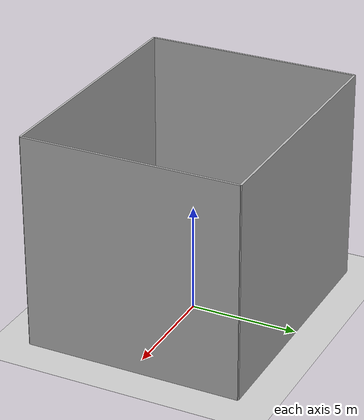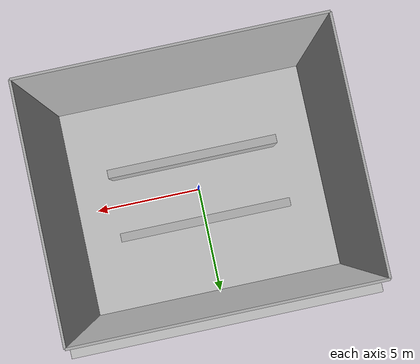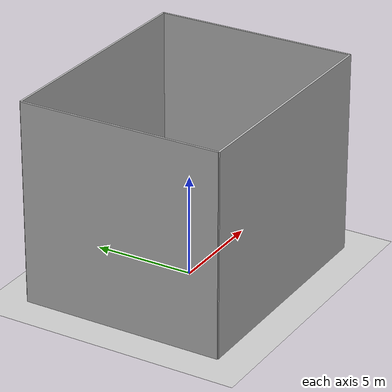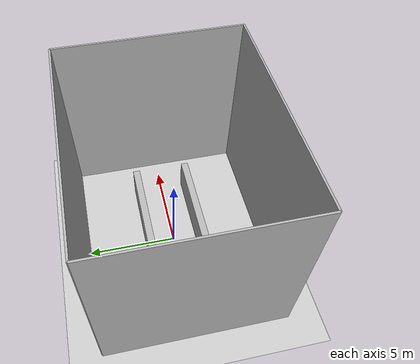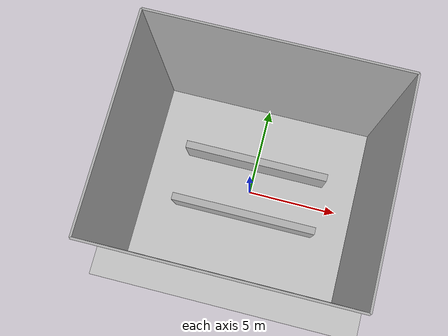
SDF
<?xml version="1.0" ?>
<sdf version="1.7">
  <world name="multi_vendor_warehouse">
    <physics type="ode">
      <max_step_size>0.001</max_step_size>
      <real_time_factor>1.0</real_time_factor>
      <real_time_update_rate>1000</real_time_update_rate>
    </physics>

    <include><uri>model://sun</uri></include>
    <include><uri>model://ground_plane</uri></include>

    <!-- Perimeter walls (12 m × 10 m × 10 m tall) -->
    <model name="wall_north">
      <static>true</static>
      <pose>0 5 5 0 0 0</pose>
      <link name="link">
        <collision name="c"><geometry><box><size>12 0.1 10</size></box></geometry></collision>
        <visual name="v"><geometry><box><size>12 0.1 10</size></box></geometry></visual>
      </link>
    </model>
    <model name="wall_south">
      <static>true</static>
      <pose>0 -5 5 0 0 0</pose>
      <link name="link">
        <collision name="c"><geometry><box><size>12 0.1 10</size></box></geometry></collision>
        <visual name="v"><geometry><box><size>12 0.1 10</size></box></geometry></visual>
      </link>
    </model>
    <model name="wall_east">
      <static>true</static>
      <pose>6 0 5 0 0 0</pose>
      <link name="link">
        <collision name="c"><geometry><box><size>0.1 10 10</size></box></geometry></collision>
        <visual name="v"><geometry><box><size>0.1 10 10</size></box></geometry></visual>
      </link>
    </model>
    <model name="wall_west">
      <static>true</static>
      <pose>-6 0 5 0 0 0</pose>
      <link name="link">
        <collision name="c"><geometry><box><size>0.1 10 10</size></box></geometry></collision>
        <visual name="v"><geometry><box><size>0.1 10 10</size></box></geometry></visual>
      </link>
    </model>

    <!-- Two parallel shelf rows on the ground level -->
    <model name="shelf_row_1">
      <static>true</static>
      <pose>0 1.5 1 0 0 0</pose>
      <link name="link">
        <collision name="c"><geometry><box><size>8 0.4 2</size></box></geometry></collision>
        <visual name="v"><geometry><box><size>8 0.4 2</size></box></geometry></visual>
      </link>
    </model>
    <model name="shelf_row_2">
      <static>true</static>
      <pose>0 -1.5 1 0 0 0</pose>
      <link name="link">
        <collision name="c"><geometry><box><size>8 0.4 2</size></box></geometry></collision>
        <visual name="v"><geometry><box><size>8 0.4 2</size></box></geometry></visual>
      </link>
    </model>
  </world>
</sdf>
